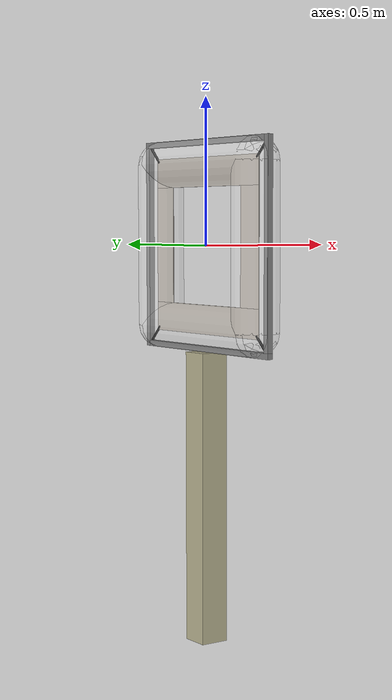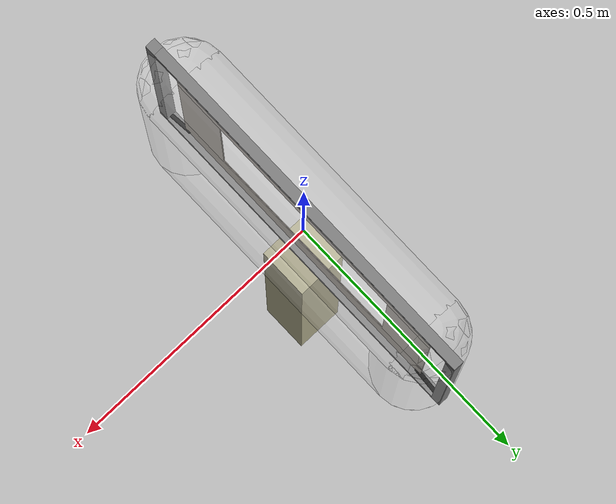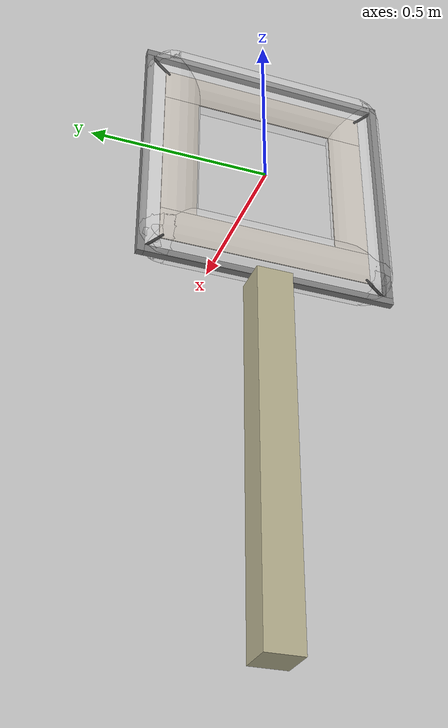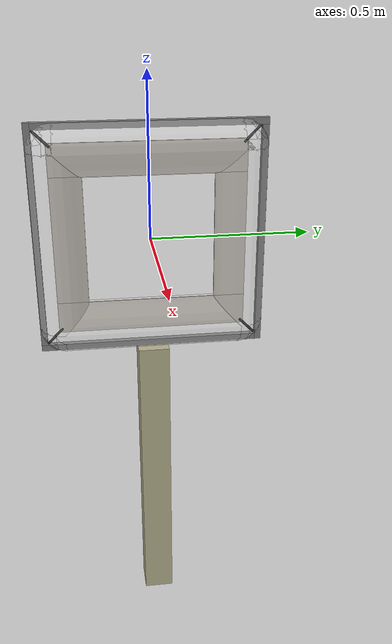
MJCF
<mujoco>
  <compiler angle="degree"/>

  <!-- Assets section -->
  <asset>
    <texture name="gate_texture_top" type="2d" file="gate_top.png" />
    <texture name="gate_texture_bottom" type="2d" file="gate_bottom.png" />
    <texture name="gate_texture_left" type="2d" file="gate_left.png" />
    <texture name="gate_texture_right" type="2d" file="gate_right.png" />
    <material name="gate_mat_top" texture="gate_texture_top" specular="0.5" shininess="0.3" reflectance="0.2" emission="0.2"/>
    <material name="gate_mat_bottom" texture="gate_texture_bottom" specular="0.5" shininess="0.3" reflectance="0.2" emission="0.2"/>
    <material name="gate_mat_left" texture="gate_texture_left" specular="0.5" shininess="0.3" reflectance="0.2" emission="0.2"/>
    <material name="gate_mat_right" texture="gate_texture_right" specular="0.5" shininess="0.3" reflectance="0.2" emission="0.2"/>
    <material name="frame_mat" rgba="0.5 0.5 0.5 1" specular="0.4" shininess="0.4" reflectance="0.5"/>
    <material name="rope_mat" rgba="0.1 0.1 0.1 1" specular="0.0" shininess="0.0" reflectance="0.0"/>
    <material name="stand_mat" rgba="0.7 0.68 0.55 1" specular="0.0" shininess="0.0" reflectance="0.0"/>
  </asset>

  <worldbody>
    <body name="gate">
      <!-- Textured front -->
      <geom name="front_top" type="box" size=".3 .05 5e-4" pos="-1e-3 0.0 0.25" euler="-90 -90 180" material="gate_mat_top" contype="0" conaffinity="0"/>
      <geom name="front_bottom" type="box" size=".3 .05 5e-4" pos="-1e-3 0.0 -0.25" euler="-90 -90 180" material="gate_mat_bottom" contype="0" conaffinity="0"/>
      <geom name="front_left" type="box" size=".05 .2 5e-4" pos="-1e-3 -0.25 0" euler="90 -90 180" material="gate_mat_left" contype="0" conaffinity="0"/>
      <geom name="front_right" type="box" size=".05 .2 5e-4" pos="-1e-3 0.25 0" euler="90 -90 180" material="gate_mat_right" contype="0" conaffinity="0"/>

      <!-- Textured back -->
      <geom name="back_top" type="box" size=".3 .05 5e-4" pos="1e-3 0.0 0.25" euler="90 90 0" material="gate_mat_top" contype="0" conaffinity="0"/>
      <geom name="back_bottom" type="box" size=".3 .05 5e-4" pos="1e-3 0.0 -0.25" euler="90 90 0" material="gate_mat_bottom" contype="0" conaffinity="0"/>
      <geom name="back_left" type="box" size=".05 .2 5e-4" pos="1e-3 -0.25 0" euler="90 90 0" material="gate_mat_left" contype="0" conaffinity="0"/>
      <geom name="back_right" type="box" size=".05 .2 5e-4" pos="1e-3 0.25 0" euler="90 90 0" material="gate_mat_right" contype="0" conaffinity="0"/>

      <!-- Frame -->
      <geom name="frame_top" type="box" size=".35 .01 .01" pos="0.0 0.01 0.35" euler="90 90 0" material="frame_mat" contype="0" conaffinity="0"/>
      <geom name="frame_bottom" type="box" size=".35 .01 .01" pos="0.0 -0.01 -0.35" euler="90 90 0" material="frame_mat" contype="0" conaffinity="0"/>
      <geom name="frame_left" type="box" size=".01 .35 .01" pos="0.0 -0.35 0.01" euler="90 90 0" material="frame_mat" contype="0" conaffinity="0"/>
      <geom name="frame_right" type="box" size=".01 .35 .01" pos="0.0 0.35 -0.01" euler="90 90 0" material="frame_mat" contype="0" conaffinity="0"/>

      <!-- Ropes -->
      <geom name="rope_top_left" type="capsule" fromto="0.0 -0.34 0.34  0.0 -0.29 0.29" size="0.004" material="rope_mat" contype="0" conaffinity="0"/>
      <geom name="rope_top_right" type="capsule" fromto="0.0 0.34 0.34   0.0 0.29 0.29" size="0.004" material="rope_mat" contype="0" conaffinity="0"/>
      <geom name="rope_bottom_left" type="capsule" fromto="0.0 -0.34 -0.34  0.0 -0.29 -0.29" size="0.004" material="rope_mat" contype="0" conaffinity="0"/>
      <geom name="rope_bottom_right" type="capsule" fromto="0.0 0.34 -0.34   0.0 0.29 -0.29" size="0.004" material="rope_mat" contype="0" conaffinity="0"/>

      <!-- Stand -->
      <geom name="gate_stand" type="box" size="0.05 0.05 0.5" pos="0 0 -0.86" material="stand_mat" contype="0" conaffinity="0"/>

      <!-- Collision Geometries -->
      <geom name="col_top" type="capsule"
            fromto="0 -0.28 0.28    0 0.28 0.28"
            size="0.08" rgba="1 1 1 0.2"
            contype="1" conaffinity="1"/>

      <!-- Bottom collision capsule: along X at z=-0.28 -->
      <geom name="col_bottom" type="capsule"
            fromto="0 -0.28 -0.28   0 0.28 -0.28"
            size="0.08" rgba="1 1 1 0.2"
            contype="1" conaffinity="1"/>

      <!-- Left collision capsule: along Z at x=-0.28 -->
      <geom name="col_left" type="capsule"
            fromto="0 -0.28 -0.28   0 -0.28 0.28"
            size="0.08" rgba="1 1 1 0.2"
            contype="1" conaffinity="1"/>

      <!-- Right collision capsule: along Z at x=+0.28 -->
      <geom name="col_right" type="capsule"
            fromto="0 0.28 -0.28   0 0.28 0.28"
            size="0.08" rgba="1 1 1 0.2"
            contype="1" conaffinity="1"/>

      <!-- Stand collision proxy (capsule) -->
    </body>
  </worldbody>
</mujoco>
